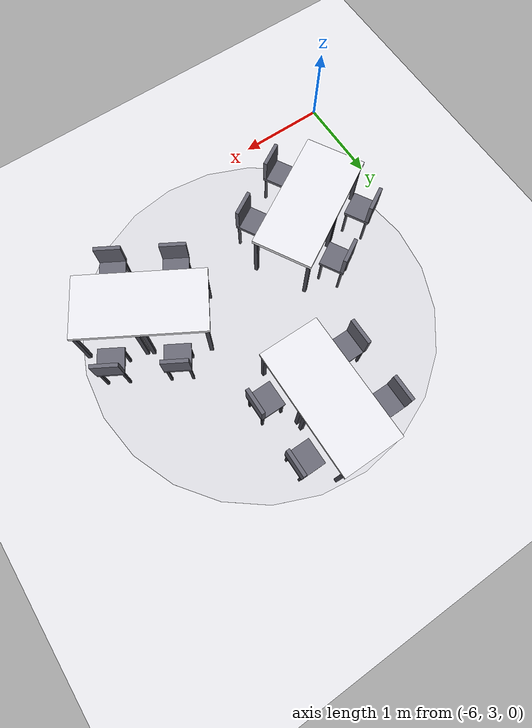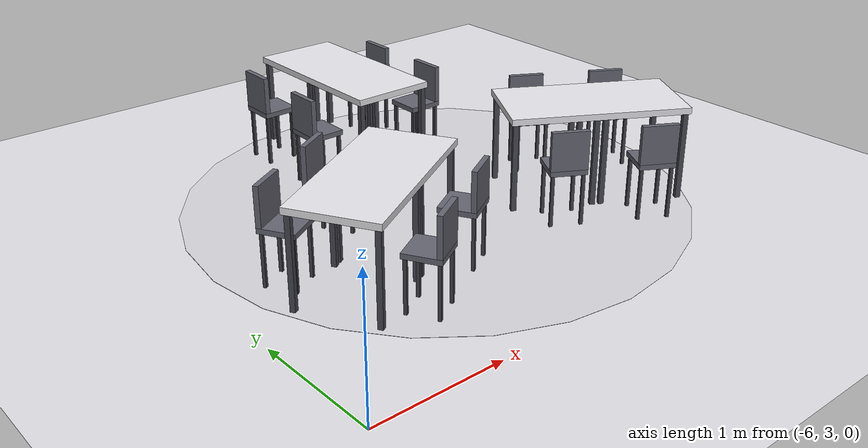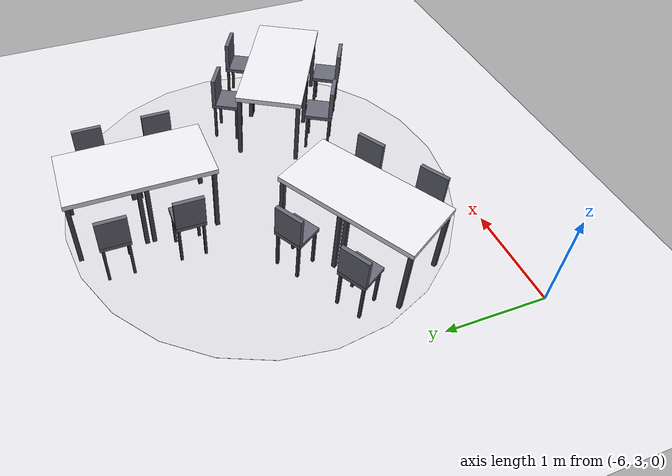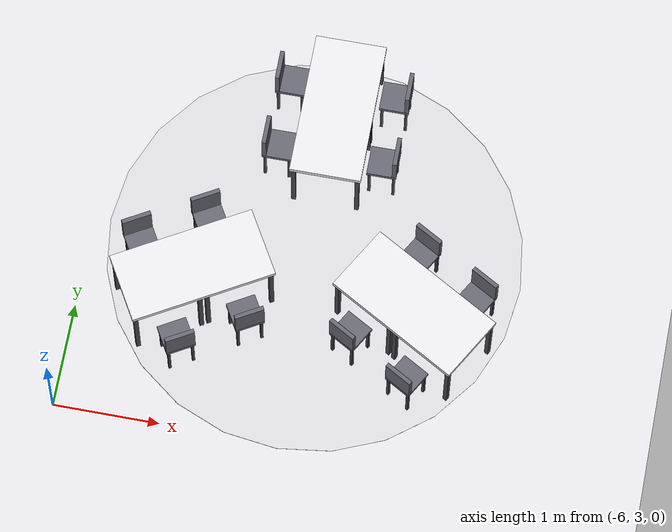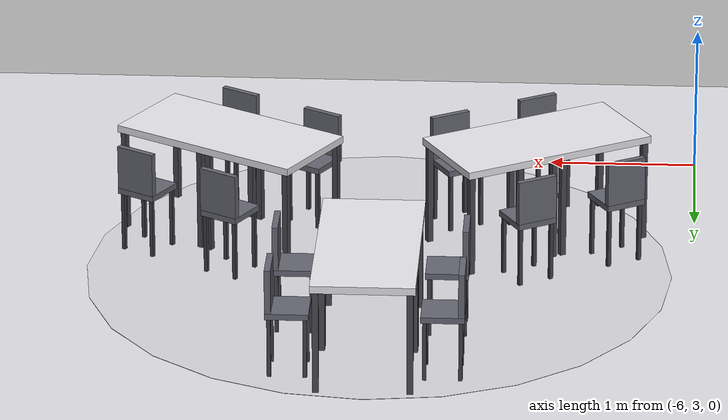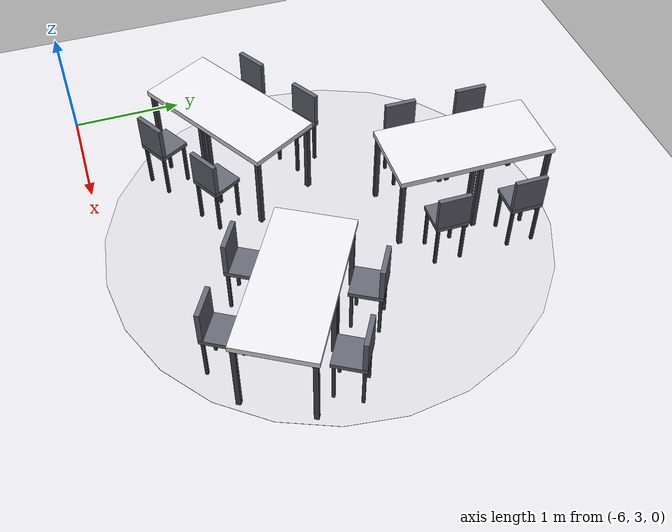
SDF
<sdf version="1.8">
 <world name="restaurant_blueprint_world">
  <model name="ground_plane">
   <static>true</static>
   <link name="link">
    <collision name="collision">
     <geometry><plane><normal>0 0 1</normal><size>120 120</size></plane></geometry>
    </collision>
    <visual name="visual">
     <geometry><plane><normal>0 0 1</normal><size>120 120</size></plane></geometry>
     <material>
      <ambient>0.88 0.88 0.90 1</ambient>
      <diffuse>0.88 0.88 0.90 1</diffuse>
      <specular>0.1 0.1 0.1 1</specular>
     </material>
    </visual>
   </link>
  </model>
  <model name="restaurant_boundary">
   <static>true</static>
   <link name="dining_cluster_north">
    <visual name="north_cluster_floor_disc_vis">
     <pose>-3.898 4.910 0.003 0 0 0</pose>
     <geometry><cylinder><radius>1.95</radius><length>0.002</length></cylinder></geometry>
     <material><ambient>0.84 0.84 0.86 1</ambient><diffuse>0.84 0.84 0.86 1</diffuse></material>
    </visual>
    <visual name="n_cluster_table_n_vis">
     <pose>-3.898 6.100 0.725 0.0000 0.0000 0.0000</pose>
     <geometry><box><size>0.67 1.38 0.05</size></box></geometry>
     <material><ambient>0.85 0.85 0.88 1</ambient><diffuse>0.90 0.90 0.92 1</diffuse></material>
    </visual>
    <visual name="n_cluster_table_n_leg_1_vis">
     <pose>-3.598 6.755 0.350 0 0 0.0000</pose>
     <geometry><box><size>0.04 0.04 0.70</size></box></geometry>
     <material><ambient>0.22 0.22 0.25 1</ambient><diffuse>0.28 0.28 0.32 1</diffuse></material>
    </visual>
    <visual name="n_cluster_table_n_leg_2_vis">
     <pose>-4.198 6.755 0.350 0 0 0.0000</pose>
     <geometry><box><size>0.04 0.04 0.70</size></box></geometry>
     <material><ambient>0.22 0.22 0.25 1</ambient><diffuse>0.28 0.28 0.32 1</diffuse></material>
    </visual>
    <visual name="n_cluster_table_n_leg_3_vis">
     <pose>-3.598 6.135 0.350 0 0 0.0000</pose>
     <geometry><box><size>0.04 0.04 0.70</size></box></geometry>
     <material><ambient>0.22 0.22 0.25 1</ambient><diffuse>0.28 0.28 0.32 1</diffuse></material>
    </visual>
    <visual name="n_cluster_table_n_leg_4_vis">
     <pose>-4.198 6.135 0.350 0 0 0.0000</pose>
     <geometry><box><size>0.04 0.04 0.70</size></box></geometry>
     <material><ambient>0.22 0.22 0.25 1</ambient><diffuse>0.28 0.28 0.32 1</diffuse></material>
    </visual>
    <visual name="n_cluster_table_n_leg_5_vis">
     <pose>-3.598 6.065 0.350 0 0 0.0000</pose>
     <geometry><box><size>0.04 0.04 0.70</size></box></geometry>
     <material><ambient>0.22 0.22 0.25 1</ambient><diffuse>0.28 0.28 0.32 1</diffuse></material>
    </visual>
    <visual name="n_cluster_table_n_leg_6_vis">
     <pose>-4.198 6.065 0.350 0 0 0.0000</pose>
     <geometry><box><size>0.04 0.04 0.70</size></box></geometry>
     <material><ambient>0.22 0.22 0.25 1</ambient><diffuse>0.28 0.28 0.32 1</diffuse></material>
    </visual>
    <visual name="n_cluster_table_n_leg_7_vis">
     <pose>-3.598 5.445 0.350 0 0 0.0000</pose>
     <geometry><box><size>0.04 0.04 0.70</size></box></geometry>
     <material><ambient>0.22 0.22 0.25 1</ambient><diffuse>0.28 0.28 0.32 1</diffuse></material>
    </visual>
    <visual name="n_cluster_table_n_leg_8_vis">
     <pose>-4.198 5.445 0.350 0 0 0.0000</pose>
     <geometry><box><size>0.04 0.04 0.70</size></box></geometry>
     <material><ambient>0.22 0.22 0.25 1</ambient><diffuse>0.28 0.28 0.32 1</diffuse></material>
    </visual>
    <collision name="n_cluster_table_n_col">
     <pose>-3.898 6.100 0.725 0.0000 0.0000 0.0000</pose>
     <geometry><box><size>0.67 1.38 0.05</size></box></geometry>
    </collision>
    <collision name="n_cluster_table_n_leg_1_col">
     <pose>-3.598 6.755 0.350 0 0 0.0000</pose>
     <geometry><box><size>0.04 0.04 0.70</size></box></geometry>
    </collision>
    <collision name="n_cluster_table_n_leg_2_col">
     <pose>-4.198 6.755 0.350 0 0 0.0000</pose>
     <geometry><box><size>0.04 0.04 0.70</size></box></geometry>
    </collision>
    <collision name="n_cluster_table_n_leg_3_col">
     <pose>-3.598 6.135 0.350 0 0 0.0000</pose>
     <geometry><box><size>0.04 0.04 0.70</size></box></geometry>
    </collision>
    <collision name="n_cluster_table_n_leg_4_col">
     <pose>-4.198 6.135 0.350 0 0 0.0000</pose>
     <geometry><box><size>0.04 0.04 0.70</size></box></geometry>
    </collision>
    <collision name="n_cluster_table_n_leg_5_col">
     <pose>-3.598 6.065 0.350 0 0 0.0000</pose>
     <geometry><box><size>0.04 0.04 0.70</size></box></geometry>
    </collision>
    <collision name="n_cluster_table_n_leg_6_col">
     <pose>-4.198 6.065 0.350 0 0 0.0000</pose>
     <geometry><box><size>0.04 0.04 0.70</size></box></geometry>
    </collision>
    <collision name="n_cluster_table_n_leg_7_col">
     <pose>-3.598 5.445 0.350 0 0 0.0000</pose>
     <geometry><box><size>0.04 0.04 0.70</size></box></geometry>
    </collision>
    <collision name="n_cluster_table_n_leg_8_col">
     <pose>-4.198 5.445 0.350 0 0 0.0000</pose>
     <geometry><box><size>0.04 0.04 0.70</size></box></geometry>
    </collision>
    <visual name="n_cluster_chair_n_e1_seat_vis">
     <pose>-3.402 6.435 0.430 0.0000 0.0000 0.0000</pose>
     <geometry><box><size>0.28 0.28 0.04</size></box></geometry>
     <material><ambient>0.30 0.30 0.33 1</ambient><diffuse>0.40 0.40 0.45 1</diffuse></material>
    </visual>
    <visual name="n_cluster_chair_n_e1_back_vis">
     <pose>-3.282 6.435 0.600 0 0 0.0000</pose>
     <geometry><box><size>0.04 0.28 0.30</size></box></geometry>
     <material><ambient>0.30 0.30 0.33 1</ambient><diffuse>0.40 0.40 0.45 1</diffuse></material>
    </visual>
    <visual name="n_cluster_chair_n_e1_leg_1_vis">
     <pose>-3.287 6.550 0.205 0 0 0.0000</pose>
     <geometry><box><size>0.025 0.025 0.41</size></box></geometry>
     <material><ambient>0.20 0.20 0.22 1</ambient><diffuse>0.25 0.25 0.28 1</diffuse></material>
    </visual>
    <visual name="n_cluster_chair_n_e1_leg_2_vis">
     <pose>-3.517 6.550 0.205 0 0 0.0000</pose>
     <geometry><box><size>0.025 0.025 0.41</size></box></geometry>
     <material><ambient>0.20 0.20 0.22 1</ambient><diffuse>0.25 0.25 0.28 1</diffuse></material>
    </visual>
    <visual name="n_cluster_chair_n_e1_leg_3_vis">
     <pose>-3.287 6.320 0.205 0 0 0.0000</pose>
     <geometry><box><size>0.025 0.025 0.41</size></box></geometry>
     <material><ambient>0.20 0.20 0.22 1</ambient><diffuse>0.25 0.25 0.28 1</diffuse></material>
    </visual>
    <visual name="n_cluster_chair_n_e1_leg_4_vis">
     <pose>-3.517 6.320 0.205 0 0 0.0000</pose>
     <geometry><box><size>0.025 0.025 0.41</size></box></geometry>
     <material><ambient>0.20 0.20 0.22 1</ambient><diffuse>0.25 0.25 0.28 1</diffuse></material>
    </visual>
    <collision name="n_cluster_chair_n_e1_seat_col">
     <pose>-3.402 6.435 0.430 0.0000 0.0000 0.0000</pose>
     <geometry><box><size>0.28 0.28 0.04</size></box></geometry>
    </collision>
    <collision name="n_cluster_chair_n_e1_back_col">
     <pose>-3.282 6.435 0.600 0 0 0.0000</pose>
     <geometry><box><size>0.04 0.28 0.30</size></box></geometry>
    </collision>
    <collision name="n_cluster_chair_n_e1_leg_1_col">
     <pose>-3.287 6.550 0.205 0 0 0.0000</pose>
     <geometry><box><size>0.025 0.025 0.41</size></box></geometry>
    </collision>
    <collision name="n_cluster_chair_n_e1_leg_2_col">
     <pose>-3.517 6.550 0.205 0 0 0.0000</pose>
     <geometry><box><size>0.025 0.025 0.41</size></box></geometry>
    </collision>
    <collision name="n_cluster_chair_n_e1_leg_3_col">
     <pose>-3.287 6.320 0.205 0 0 0.0000</pose>
     <geometry><box><size>0.025 0.025 0.41</size></box></geometry>
    </collision>
    <collision name="n_cluster_chair_n_e1_leg_4_col">
     <pose>-3.517 6.320 0.205 0 0 0.0000</pose>
     <geometry><box><size>0.025 0.025 0.41</size></box></geometry>
    </collision>
    <visual name="n_cluster_chair_n_e2_seat_vis">
     <pose>-3.402 5.765 0.430 0.0000 0.0000 0.0000</pose>
     <geometry><box><size>0.28 0.28 0.04</size></box></geometry>
     <material><ambient>0.30 0.30 0.33 1</ambient><diffuse>0.40 0.40 0.45 1</diffuse></material>
    </visual>
    <visual name="n_cluster_chair_n_e2_back_vis">
     <pose>-3.282 5.765 0.600 0 0 0.0000</pose>
     <geometry><box><size>0.04 0.28 0.30</size></box></geometry>
     <material><ambient>0.30 0.30 0.33 1</ambient><diffuse>0.40 0.40 0.45 1</diffuse></material>
    </visual>
    <visual name="n_cluster_chair_n_e2_leg_1_vis">
     <pose>-3.287 5.880 0.205 0 0 0.0000</pose>
     <geometry><box><size>0.025 0.025 0.41</size></box></geometry>
     <material><ambient>0.20 0.20 0.22 1</ambient><diffuse>0.25 0.25 0.28 1</diffuse></material>
    </visual>
    <visual name="n_cluster_chair_n_e2_leg_2_vis">
     <pose>-3.517 5.880 0.205 0 0 0.0000</pose>
     <geometry><box><size>0.025 0.025 0.41</size></box></geometry>
     <material><ambient>0.20 0.20 0.22 1</ambient><diffuse>0.25 0.25 0.28 1</diffuse></material>
    </visual>
    <visual name="n_cluster_chair_n_e2_leg_3_vis">
     <pose>-3.287 5.650 0.205 0 0 0.0000</pose>
     <geometry><box><size>0.025 0.025 0.41</size></box></geometry>
     <material><ambient>0.20 0.20 0.22 1</ambient><diffuse>0.25 0.25 0.28 1</diffuse></material>
    </visual>
    <visual name="n_cluster_chair_n_e2_leg_4_vis">
     <pose>-3.517 5.650 0.205 0 0 0.0000</pose>
     <geometry><box><size>0.025 0.025 0.41</size></box></geometry>
     <material><ambient>0.20 0.20 0.22 1</ambient><diffuse>0.25 0.25 0.28 1</diffuse></material>
    </visual>
    <collision name="n_cluster_chair_n_e2_seat_col">
     <pose>-3.402 5.765 0.430 0.0000 0.0000 0.0000</pose>
     <geometry><box><size>0.28 0.28 0.04</size></box></geometry>
    </collision>
    <collision name="n_cluster_chair_n_e2_back_col">
     <pose>-3.282 5.765 0.600 0 0 0.0000</pose>
     <geometry><box><size>0.04 0.28 0.30</size></box></geometry>
    </collision>
    <collision name="n_cluster_chair_n_e2_leg_1_col">
     <pose>-3.287 5.880 0.205 0 0 0.0000</pose>
     <geometry><box><size>0.025 0.025 0.41</size></box></geometry>
    </collision>
    <collision name="n_cluster_chair_n_e2_leg_2_col">
     <pose>-3.517 5.880 0.205 0 0 0.0000</pose>
     <geometry><box><size>0.025 0.025 0.41</size></box></geometry>
    </collision>
    <collision name="n_cluster_chair_n_e2_leg_3_col">
     <pose>-3.287 5.650 0.205 0 0 0.0000</pose>
     <geometry><box><size>0.025 0.025 0.41</size></box></geometry>
    </collision>
    <collision name="n_cluster_chair_n_e2_leg_4_col">
     <pose>-3.517 5.650 0.205 0 0 0.0000</pose>
     <geometry><box><size>0.025 0.025 0.41</size></box></geometry>
    </collision>
    <visual name="n_cluster_chair_n_w1_seat_vis">
     <pose>-4.394 6.435 0.430 0.0000 0.0000 0.0000</pose>
     <geometry><box><size>0.28 0.28 0.04</size></box></geometry>
     <material><ambient>0.30 0.30 0.33 1</ambient><diffuse>0.40 0.40 0.45 1</diffuse></material>
    </visual>
    <visual name="n_cluster_chair_n_w1_back_vis">
     <pose>-4.514 6.435 0.600 0 0 0.0000</pose>
     <geometry><box><size>0.04 0.28 0.30</size></box></geometry>
     <material><ambient>0.30 0.30 0.33 1</ambient><diffuse>0.40 0.40 0.45 1</diffuse></material>
    </visual>
    <visual name="n_cluster_chair_n_w1_leg_1_vis">
     <pose>-4.279 6.550 0.205 0 0 0.0000</pose>
     <geometry><box><size>0.025 0.025 0.41</size></box></geometry>
     <material><ambient>0.20 0.20 0.22 1</ambient><diffuse>0.25 0.25 0.28 1</diffuse></material>
    </visual>
    <visual name="n_cluster_chair_n_w1_leg_2_vis">
     <pose>-4.509 6.550 0.205 0 0 0.0000</pose>
     <geometry><box><size>0.025 0.025 0.41</size></box></geometry>
     <material><ambient>0.20 0.20 0.22 1</ambient><diffuse>0.25 0.25 0.28 1</diffuse></material>
    </visual>
    <visual name="n_cluster_chair_n_w1_leg_3_vis">
     <pose>-4.279 6.320 0.205 0 0 0.0000</pose>
     <geometry><box><size>0.025 0.025 0.41</size></box></geometry>
     <material><ambient>0.20 0.20 0.22 1</ambient><diffuse>0.25 0.25 0.28 1</diffuse></material>
    </visual>
    <visual name="n_cluster_chair_n_w1_leg_4_vis">
     <pose>-4.509 6.320 0.205 0 0 0.0000</pose>
     <geometry><box><size>0.025 0.025 0.41</size></box></geometry>
     <material><ambient>0.20 0.20 0.22 1</ambient><diffuse>0.25 0.25 0.28 1</diffuse></material>
    </visual>
    <collision name="n_cluster_chair_n_w1_seat_col">
     <pose>-4.394 6.435 0.430 0.0000 0.0000 0.0000</pose>
     <geometry><box><size>0.28 0.28 0.04</size></box></geometry>
    </collision>
    <collision name="n_cluster_chair_n_w1_back_col">
     <pose>-4.514 6.435 0.600 0 0 0.0000</pose>
     <geometry><box><size>0.04 0.28 0.30</size></box></geometry>
    </collision>
    <collision name="n_cluster_chair_n_w1_leg_1_col">
     <pose>-4.279 6.550 0.205 0 0 0.0000</pose>
     <geometry><box><size>0.025 0.025 0.41</size></box></geometry>
    </collision>
    <collision name="n_cluster_chair_n_w1_leg_2_col">
     <pose>-4.509 6.550 0.205 0 0 0.0000</pose>
     <geometry><box><size>0.025 0.025 0.41</size></box></geometry>
    </collision>
    <collision name="n_cluster_chair_n_w1_leg_3_col">
     <pose>-4.279 6.320 0.205 0 0 0.0000</pose>
     <geometry><box><size>0.025 0.025 0.41</size></box></geometry>
    </collision>
    <collision name="n_cluster_chair_n_w1_leg_4_col">
     <pose>-4.509 6.320 0.205 0 0 0.0000</pose>
     <geometry><box><size>0.025 0.025 0.41</size></box></geometry>
    </collision>
    <visual name="n_cluster_chair_n_w2_seat_vis">
     <pose>-4.394 5.765 0.430 0.0000 0.0000 0.0000</pose>
     <geometry><box><size>0.28 0.28 0.04</size></box></geometry>
     <material><ambient>0.30 0.30 0.33 1</ambient><diffuse>0.40 0.40 0.45 1</diffuse></material>
    </visual>
    <visual name="n_cluster_chair_n_w2_back_vis">
     <pose>-4.514 5.765 0.600 0 0 0.0000</pose>
     <geometry><box><size>0.04 0.28 0.30</size></box></geometry>
     <material><ambient>0.30 0.30 0.33 1</ambient><diffuse>0.40 0.40 0.45 1</diffuse></material>
    </visual>
    <visual name="n_cluster_chair_n_w2_leg_1_vis">
     <pose>-4.279 5.880 0.205 0 0 0.0000</pose>
     <geometry><box><size>0.025 0.025 0.41</size></box></geometry>
     <material><ambient>0.20 0.20 0.22 1</ambient><diffuse>0.25 0.25 0.28 1</diffuse></material>
    </visual>
    <visual name="n_cluster_chair_n_w2_leg_2_vis">
     <pose>-4.509 5.880 0.205 0 0 0.0000</pose>
     <geometry><box><size>0.025 0.025 0.41</size></box></geometry>
     <material><ambient>0.20 0.20 0.22 1</ambient><diffuse>0.25 0.25 0.28 1</diffuse></material>
    </visual>
    <visual name="n_cluster_chair_n_w2_leg_3_vis">
     <pose>-4.279 5.650 0.205 0 0 0.0000</pose>
     <geometry><box><size>0.025 0.025 0.41</size></box></geometry>
     <material><ambient>0.20 0.20 0.22 1</ambient><diffuse>0.25 0.25 0.28 1</diffuse></material>
    </visual>
    <visual name="n_cluster_chair_n_w2_leg_4_vis">
     <pose>-4.509 5.650 0.205 0 0 0.0000</pose>
     <geometry><box><size>0.025 0.025 0.41</size></box></geometry>
     <material><ambient>0.20 0.20 0.22 1</ambient><diffuse>0.25 0.25 0.28 1</diffuse></material>
    </visual>
    <collision name="n_cluster_chair_n_w2_seat_col">
     <pose>-4.394 5.765 0.430 0.0000 0.0000 0.0000</pose>
     <geometry><box><size>0.28 0.28 0.04</size></box></geometry>
    </collision>
    <collision name="n_cluster_chair_n_w2_back_col">
     <pose>-4.514 5.765 0.600 0 0 0.0000</pose>
     <geometry><box><size>0.04 0.28 0.30</size></box></geometry>
    </collision>
    <collision name="n_cluster_chair_n_w2_leg_1_col">
     <pose>-4.279 5.880 0.205 0 0 0.0000</pose>
     <geometry><box><size>0.025 0.025 0.41</size></box></geometry>
    </collision>
    <collision name="n_cluster_chair_n_w2_leg_2_col">
     <pose>-4.509 5.880 0.205 0 0 0.0000</pose>
     <geometry><box><size>0.025 0.025 0.41</size></box></geometry>
    </collision>
    <collision name="n_cluster_chair_n_w2_leg_3_col">
     <pose>-4.279 5.650 0.205 0 0 0.0000</pose>
     <geometry><box><size>0.025 0.025 0.41</size></box></geometry>
    </collision>
    <collision name="n_cluster_chair_n_w2_leg_4_col">
     <pose>-4.509 5.650 0.205 0 0 0.0000</pose>
     <geometry><box><size>0.025 0.025 0.41</size></box></geometry>
    </collision>
    <visual name="n_cluster_table_sw_vis">
     <pose>-4.929 4.315 0.725 0.0000 0.0000 2.0944</pose>
     <geometry><box><size>0.67 1.38 0.05</size></box></geometry>
     <material><ambient>0.85 0.85 0.88 1</ambient><diffuse>0.90 0.90 0.92 1</diffuse></material>
    </visual>
    <visual name="n_cluster_table_sw_leg_1_vis">
     <pose>-5.646 4.247 0.350 0 0 2.0944</pose>
     <geometry><box><size>0.04 0.04 0.70</size></box></geometry>
     <material><ambient>0.22 0.22 0.25 1</ambient><diffuse>0.28 0.28 0.32 1</diffuse></material>
    </visual>
    <visual name="n_cluster_table_sw_leg_2_vis">
     <pose>-5.346 3.728 0.350 0 0 2.0944</pose>
     <geometry><box><size>0.04 0.04 0.70</size></box></geometry>
     <material><ambient>0.22 0.22 0.25 1</ambient><diffuse>0.28 0.28 0.32 1</diffuse></material>
    </visual>
    <visual name="n_cluster_table_sw_leg_3_vis">
     <pose>-5.109 4.557 0.350 0 0 2.0944</pose>
     <geometry><box><size>0.04 0.04 0.70</size></box></geometry>
     <material><ambient>0.22 0.22 0.25 1</ambient><diffuse>0.28 0.28 0.32 1</diffuse></material>
    </visual>
    <visual name="n_cluster_table_sw_leg_4_vis">
     <pose>-4.809 4.038 0.350 0 0 2.0944</pose>
     <geometry><box><size>0.04 0.04 0.70</size></box></geometry>
     <material><ambient>0.22 0.22 0.25 1</ambient><diffuse>0.28 0.28 0.32 1</diffuse></material>
    </visual>
    <visual name="n_cluster_table_sw_leg_5_vis">
     <pose>-5.049 4.592 0.350 0 0 2.0944</pose>
     <geometry><box><size>0.04 0.04 0.70</size></box></geometry>
     <material><ambient>0.22 0.22 0.25 1</ambient><diffuse>0.28 0.28 0.32 1</diffuse></material>
    </visual>
    <visual name="n_cluster_table_sw_leg_6_vis">
     <pose>-4.749 4.073 0.350 0 0 2.0944</pose>
     <geometry><box><size>0.04 0.04 0.70</size></box></geometry>
     <material><ambient>0.22 0.22 0.25 1</ambient><diffuse>0.28 0.28 0.32 1</diffuse></material>
    </visual>
    <visual name="n_cluster_table_sw_leg_7_vis">
     <pose>-4.512 4.902 0.350 0 0 2.0944</pose>
     <geometry><box><size>0.04 0.04 0.70</size></box></geometry>
     <material><ambient>0.22 0.22 0.25 1</ambient><diffuse>0.28 0.28 0.32 1</diffuse></material>
    </visual>
    <visual name="n_cluster_table_sw_leg_8_vis">
     <pose>-4.212 4.383 0.350 0 0 2.0944</pose>
     <geometry><box><size>0.04 0.04 0.70</size></box></geometry>
     <material><ambient>0.22 0.22 0.25 1</ambient><diffuse>0.28 0.28 0.32 1</diffuse></material>
    </visual>
    <collision name="n_cluster_table_sw_col">
     <pose>-4.929 4.315 0.725 0.0000 0.0000 2.0944</pose>
     <geometry><box><size>0.67 1.38 0.05</size></box></geometry>
    </collision>
    <collision name="n_cluster_table_sw_leg_1_col">
     <pose>-5.646 4.247 0.350 0 0 2.0944</pose>
     <geometry><box><size>0.04 0.04 0.70</size></box></geometry>
    </collision>
    <collision name="n_cluster_table_sw_leg_2_col">
     <pose>-5.346 3.728 0.350 0 0 2.0944</pose>
     <geometry><box><size>0.04 0.04 0.70</size></box></geometry>
    </collision>
    <collision name="n_cluster_table_sw_leg_3_col">
     <pose>-5.109 4.557 0.350 0 0 2.0944</pose>
     <geometry><box><size>0.04 0.04 0.70</size></box></geometry>
    </collision>
    <collision name="n_cluster_table_sw_leg_4_col">
     <pose>-4.809 4.038 0.350 0 0 2.0944</pose>
     <geometry><box><size>0.04 0.04 0.70</size></box></geometry>
    </collision>
    <collision name="n_cluster_table_sw_leg_5_col">
     <pose>-5.049 4.592 0.350 0 0 2.0944</pose>
     <geometry><box><size>0.04 0.04 0.70</size></box></geometry>
    </collision>
    <collision name="n_cluster_table_sw_leg_6_col">
     <pose>-4.749 4.073 0.350 0 0 2.0944</pose>
     <geometry><box><size>0.04 0.04 0.70</size></box></geometry>
    </collision>
    <collision name="n_cluster_table_sw_leg_7_col">
     <pose>-4.512 4.902 0.350 0 0 2.0944</pose>
     <geometry><box><size>0.04 0.04 0.70</size></box></geometry>
    </collision>
    <collision name="n_cluster_table_sw_leg_8_col">
     <pose>-4.212 4.383 0.350 0 0 2.0944</pose>
     <geometry><box><size>0.04 0.04 0.70</size></box></geometry>
    </collision>
    <visual name="n_cluster_chair_sw_e1_seat_vis">
     <pose>-5.467 4.577 0.430 0.0000 0.0000 2.0944</pose>
     <geometry><box><size>0.28 0.28 0.04</size></box></geometry>
     <material><ambient>0.30 0.30 0.33 1</ambient><diffuse>0.40 0.40 0.45 1</diffuse></material>
    </visual>
    <visual name="n_cluster_chair_sw_e1_back_vis">
     <pose>-5.527 4.681 0.600 0 0 2.0944</pose>
     <geometry><box><size>0.04 0.28 0.30</size></box></geometry>
     <material><ambient>0.30 0.30 0.33 1</ambient><diffuse>0.40 0.40 0.45 1</diffuse></material>
    </visual>
    <visual name="n_cluster_chair_sw_e1_leg_1_vis">
     <pose>-5.624 4.619 0.205 0 0 2.0944</pose>
     <geometry><box><size>0.025 0.025 0.41</size></box></geometry>
     <material><ambient>0.20 0.20 0.22 1</ambient><diffuse>0.25 0.25 0.28 1</diffuse></material>
    </visual>
    <visual name="n_cluster_chair_sw_e1_leg_2_vis">
     <pose>-5.509 4.420 0.205 0 0 2.0944</pose>
     <geometry><box><size>0.025 0.025 0.41</size></box></geometry>
     <material><ambient>0.20 0.20 0.22 1</ambient><diffuse>0.25 0.25 0.28 1</diffuse></material>
    </visual>
    <visual name="n_cluster_chair_sw_e1_leg_3_vis">
     <pose>-5.425 4.734 0.205 0 0 2.0944</pose>
     <geometry><box><size>0.025 0.025 0.41</size></box></geometry>
     <material><ambient>0.20 0.20 0.22 1</ambient><diffuse>0.25 0.25 0.28 1</diffuse></material>
    </visual>
    <visual name="n_cluster_chair_sw_e1_leg_4_vis">
     <pose>-5.310 4.535 0.205 0 0 2.0944</pose>
     <geometry><box><size>0.025 0.025 0.41</size></box></geometry>
     <material><ambient>0.20 0.20 0.22 1</ambient><diffuse>0.25 0.25 0.28 1</diffuse></material>
    </visual>
    <collision name="n_cluster_chair_sw_e1_seat_col">
     <pose>-5.467 4.577 0.430 0.0000 0.0000 2.0944</pose>
     <geometry><box><size>0.28 0.28 0.04</size></box></geometry>
    </collision>
    <collision name="n_cluster_chair_sw_e1_back_col">
     <pose>-5.527 4.681 0.600 0 0 2.0944</pose>
     <geometry><box><size>0.04 0.28 0.30</size></box></geometry>
    </collision>
    <collision name="n_cluster_chair_sw_e1_leg_1_col">
     <pose>-5.624 4.619 0.205 0 0 2.0944</pose>
     <geometry><box><size>0.025 0.025 0.41</size></box></geometry>
    </collision>
    <collision name="n_cluster_chair_sw_e1_leg_2_col">
     <pose>-5.509 4.420 0.205 0 0 2.0944</pose>
     <geometry><box><size>0.025 0.025 0.41</size></box></geometry>
    </collision>
    <collision name="n_cluster_chair_sw_e1_leg_3_col">
     <pose>-5.425 4.734 0.205 0 0 2.0944</pose>
     <geometry><box><size>0.025 0.025 0.41</size></box></geometry>
    </collision>
    <collision name="n_cluster_chair_sw_e1_leg_4_col">
     <pose>-5.310 4.535 0.205 0 0 2.0944</pose>
     <geometry><box><size>0.025 0.025 0.41</size></box></geometry>
    </collision>
    <visual name="n_cluster_chair_sw_e2_seat_vis">
     <pose>-4.886 4.912 0.430 0.0000 0.0000 2.0944</pose>
     <geometry><box><size>0.28 0.28 0.04</size></box></geometry>
     <material><ambient>0.30 0.30 0.33 1</ambient><diffuse>0.40 0.40 0.45 1</diffuse></material>
    </visual>
    <visual name="n_cluster_chair_sw_e2_back_vis">
     <pose>-4.946 5.016 0.600 0 0 2.0944</pose>
     <geometry><box><size>0.04 0.28 0.30</size></box></geometry>
     <material><ambient>0.30 0.30 0.33 1</ambient><diffuse>0.40 0.40 0.45 1</diffuse></material>
    </visual>
    <visual name="n_cluster_chair_sw_e2_leg_1_vis">
     <pose>-5.043 4.954 0.205 0 0 2.0944</pose>
     <geometry><box><size>0.025 0.025 0.41</size></box></geometry>
     <material><ambient>0.20 0.20 0.22 1</ambient><diffuse>0.25 0.25 0.28 1</diffuse></material>
    </visual>
    <visual name="n_cluster_chair_sw_e2_leg_2_vis">
     <pose>-4.928 4.755 0.205 0 0 2.0944</pose>
     <geometry><box><size>0.025 0.025 0.41</size></box></geometry>
     <material><ambient>0.20 0.20 0.22 1</ambient><diffuse>0.25 0.25 0.28 1</diffuse></material>
    </visual>
    <visual name="n_cluster_chair_sw_e2_leg_3_vis">
     <pose>-4.844 5.069 0.205 0 0 2.0944</pose>
     <geometry><box><size>0.025 0.025 0.41</size></box></geometry>
     <material><ambient>0.20 0.20 0.22 1</ambient><diffuse>0.25 0.25 0.28 1</diffuse></material>
    </visual>
    <visual name="n_cluster_chair_sw_e2_leg_4_vis">
     <pose>-4.729 4.870 0.205 0 0 2.0944</pose>
     <geometry><box><size>0.025 0.025 0.41</size></box></geometry>
     <material><ambient>0.20 0.20 0.22 1</ambient><diffuse>0.25 0.25 0.28 1</diffuse></material>
    </visual>
    <collision name="n_cluster_chair_sw_e2_seat_col">
     <pose>-4.886 4.912 0.430 0.0000 0.0000 2.0944</pose>
     <geometry><box><size>0.28 0.28 0.04</size></box></geometry>
    </collision>
    <collision name="n_cluster_chair_sw_e2_back_col">
     <pose>-4.946 5.016 0.600 0 0 2.0944</pose>
     <geometry><box><size>0.04 0.28 0.30</size></box></geometry>
    </collision>
    <collision name="n_cluster_chair_sw_e2_leg_1_col">
     <pose>-5.043 4.954 0.205 0 0 2.0944</pose>
     <geometry><box><size>0.025 0.025 0.41</size></box></geometry>
    </collision>
    <collision name="n_cluster_chair_sw_e2_leg_2_col">
     <pose>-4.928 4.755 0.205 0 0 2.0944</pose>
     <geometry><box><size>0.025 0.025 0.41</size></box></geometry>
    </collision>
    <collision name="n_cluster_chair_sw_e2_leg_3_col">
     <pose>-4.844 5.069 0.205 0 0 2.0944</pose>
     <geometry><box><size>0.025 0.025 0.41</size></box></geometry>
    </collision>
    <collision name="n_cluster_chair_sw_e2_leg_4_col">
     <pose>-4.729 4.870 0.205 0 0 2.0944</pose>
     <geometry><box><size>0.025 0.025 0.41</size></box></geometry>
    </collision>
    <visual name="n_cluster_chair_sw_w1_seat_vis">
     <pose>-4.971 3.718 0.430 0.0000 0.0000 2.0944</pose>
     <geometry><box><size>0.28 0.28 0.04</size></box></geometry>
     <material><ambient>0.30 0.30 0.33 1</ambient><diffuse>0.40 0.40 0.45 1</diffuse></material>
    </visual>
    <visual name="n_cluster_chair_sw_w1_back_vis">
     <pose>-4.911 3.614 0.600 0 0 2.0944</pose>
     <geometry><box><size>0.04 0.28 0.30</size></box></geometry>
     <material><ambient>0.30 0.30 0.33 1</ambient><diffuse>0.40 0.40 0.45 1</diffuse></material>
    </visual>
    <visual name="n_cluster_chair_sw_w1_leg_1_vis">
     <pose>-5.128 3.760 0.205 0 0 2.0944</pose>
     <geometry><box><size>0.025 0.025 0.41</size></box></geometry>
     <material><ambient>0.20 0.20 0.22 1</ambient><diffuse>0.25 0.25 0.28 1</diffuse></material>
    </visual>
    <visual name="n_cluster_chair_sw_w1_leg_2_vis">
     <pose>-5.013 3.561 0.205 0 0 2.0944</pose>
     <geometry><box><size>0.025 0.025 0.41</size></box></geometry>
     <material><ambient>0.20 0.20 0.22 1</ambient><diffuse>0.25 0.25 0.28 1</diffuse></material>
    </visual>
    <visual name="n_cluster_chair_sw_w1_leg_3_vis">
     <pose>-4.929 3.875 0.205 0 0 2.0944</pose>
     <geometry><box><size>0.025 0.025 0.41</size></box></geometry>
     <material><ambient>0.20 0.20 0.22 1</ambient><diffuse>0.25 0.25 0.28 1</diffuse></material>
    </visual>
    <visual name="n_cluster_chair_sw_w1_leg_4_vis">
     <pose>-4.814 3.676 0.205 0 0 2.0944</pose>
     <geometry><box><size>0.025 0.025 0.41</size></box></geometry>
     <material><ambient>0.20 0.20 0.22 1</ambient><diffuse>0.25 0.25 0.28 1</diffuse></material>
    </visual>
    <collision name="n_cluster_chair_sw_w1_seat_col">
     <pose>-4.971 3.718 0.430 0.0000 0.0000 2.0944</pose>
     <geometry><box><size>0.28 0.28 0.04</size></box></geometry>
    </collision>
    <collision name="n_cluster_chair_sw_w1_back_col">
     <pose>-4.911 3.614 0.600 0 0 2.0944</pose>
     <geometry><box><size>0.04 0.28 0.30</size></box></geometry>
    </collision>
    <collision name="n_cluster_chair_sw_w1_leg_1_col">
     <pose>-5.128 3.760 0.205 0 0 2.0944</pose>
     <geometry><box><size>0.025 0.025 0.41</size></box></geometry>
    </collision>
    <collision name="n_cluster_chair_sw_w1_leg_2_col">
     <pose>-5.013 3.561 0.205 0 0 2.0944</pose>
     <geometry><box><size>0.025 0.025 0.41</size></box></geometry>
    </collision>
    <collision name="n_cluster_chair_sw_w1_leg_3_col">
     <pose>-4.929 3.875 0.205 0 0 2.0944</pose>
     <geometry><box><size>0.025 0.025 0.41</size></box></geometry>
    </collision>
    <collision name="n_cluster_chair_sw_w1_leg_4_col">
     <pose>-4.814 3.676 0.205 0 0 2.0944</pose>
     <geometry><box><size>0.025 0.025 0.41</size></box></geometry>
    </collision>
    <visual name="n_cluster_chair_sw_w2_seat_vis">
     <pose>-4.390 4.053 0.430 0.0000 0.0000 2.0944</pose>
     <geometry><box><size>0.28 0.28 0.04</size></box></geometry>
     <material><ambient>0.30 0.30 0.33 1</ambient><diffuse>0.40 0.40 0.45 1</diffuse></material>
    </visual>
    <visual name="n_cluster_chair_sw_w2_back_vis">
     <pose>-4.330 3.949 0.600 0 0 2.0944</pose>
     <geometry><box><size>0.04 0.28 0.30</size></box></geometry>
     <material><ambient>0.30 0.30 0.33 1</ambient><diffuse>0.40 0.40 0.45 1</diffuse></material>
    </visual>
    <visual name="n_cluster_chair_sw_w2_leg_1_vis">
     <pose>-4.547 4.095 0.205 0 0 2.0944</pose>
     <geometry><box><size>0.025 0.025 0.41</size></box></geometry>
     <material><ambient>0.20 0.20 0.22 1</ambient><diffuse>0.25 0.25 0.28 1</diffuse></material>
    </visual>
    <visual name="n_cluster_chair_sw_w2_leg_2_vis">
     <pose>-4.432 3.896 0.205 0 0 2.0944</pose>
     <geometry><box><size>0.025 0.025 0.41</size></box></geometry>
     <material><ambient>0.20 0.20 0.22 1</ambient><diffuse>0.25 0.25 0.28 1</diffuse></material>
    </visual>
    <visual name="n_cluster_chair_sw_w2_leg_3_vis">
     <pose>-4.348 4.210 0.205 0 0 2.0944</pose>
     <geometry><box><size>0.025 0.025 0.41</size></box></geometry>
     <material><ambient>0.20 0.20 0.22 1</ambient><diffuse>0.25 0.25 0.28 1</diffuse></material>
    </visual>
    <visual name="n_cluster_chair_sw_w2_leg_4_vis">
     <pose>-4.233 4.011 0.205 0 0 2.0944</pose>
     <geometry><box><size>0.025 0.025 0.41</size></box></geometry>
     <material><ambient>0.20 0.20 0.22 1</ambient><diffuse>0.25 0.25 0.28 1</diffuse></material>
    </visual>
    <collision name="n_cluster_chair_sw_w2_seat_col">
     <pose>-4.390 4.053 0.430 0.0000 0.0000 2.0944</pose>
     <geometry><box><size>0.28 0.28 0.04</size></box></geometry>
    </collision>
    <collision name="n_cluster_chair_sw_w2_back_col">
     <pose>-4.330 3.949 0.600 0 0 2.0944</pose>
     <geometry><box><size>0.04 0.28 0.30</size></box></geometry>
    </collision>
    <collision name="n_cluster_chair_sw_w2_leg_1_col">
     <pose>-4.547 4.095 0.205 0 0 2.0944</pose>
     <geometry><box><size>0.025 0.025 0.41</size></box></geometry>
    </collision>
    <collision name="n_cluster_chair_sw_w2_leg_2_col">
     <pose>-4.432 3.896 0.205 0 0 2.0944</pose>
     <geometry><box><size>0.025 0.025 0.41</size></box></geometry>
    </collision>
    <collision name="n_cluster_chair_sw_w2_leg_3_col">
     <pose>-4.348 4.210 0.205 0 0 2.0944</pose>
     <geometry><box><size>0.025 0.025 0.41</size></box></geometry>
    </collision>
    <collision name="n_cluster_chair_sw_w2_leg_4_col">
     <pose>-4.233 4.011 0.205 0 0 2.0944</pose>
     <geometry><box><size>0.025 0.025 0.41</size></box></geometry>
    </collision>
    <visual name="n_cluster_table_se_vis">
     <pose>-2.867 4.315 0.725 0.0000 0.0000 -2.0944</pose>
     <geometry><box><size>0.67 1.38 0.05</size></box></geometry>
     <material><ambient>0.85 0.85 0.88 1</ambient><diffuse>0.90 0.90 0.92 1</diffuse></material>
    </visual>
    <visual name="n_cluster_table_se_leg_1_vis">
     <pose>-2.450 3.728 0.350 0 0 -2.0944</pose>
     <geometry><box><size>0.04 0.04 0.70</size></box></geometry>
     <material><ambient>0.22 0.22 0.25 1</ambient><diffuse>0.28 0.28 0.32 1</diffuse></material>
    </visual>
    <visual name="n_cluster_table_se_leg_2_vis">
     <pose>-2.150 4.247 0.350 0 0 -2.0944</pose>
     <geometry><box><size>0.04 0.04 0.70</size></box></geometry>
     <material><ambient>0.22 0.22 0.25 1</ambient><diffuse>0.28 0.28 0.32 1</diffuse></material>
    </visual>
    <visual name="n_cluster_table_se_leg_3_vis">
     <pose>-2.987 4.038 0.350 0 0 -2.0944</pose>
     <geometry><box><size>0.04 0.04 0.70</size></box></geometry>
     <material><ambient>0.22 0.22 0.25 1</ambient><diffuse>0.28 0.28 0.32 1</diffuse></material>
    </visual>
    <visual name="n_cluster_table_se_leg_4_vis">
     <pose>-2.687 4.557 0.350 0 0 -2.0944</pose>
     <geometry><box><size>0.04 0.04 0.70</size></box></geometry>
     <material><ambient>0.22 0.22 0.25 1</ambient><diffuse>0.28 0.28 0.32 1</diffuse></material>
    </visual>
    <visual name="n_cluster_table_se_leg_5_vis">
     <pose>-3.047 4.073 0.350 0 0 -2.0944</pose>
     <geometry><box><size>0.04 0.04 0.70</size></box></geometry>
     <material><ambient>0.22 0.22 0.25 1</ambient><diffuse>0.28 0.28 0.32 1</diffuse></material>
    </visual>
    <visual name="n_cluster_table_se_leg_6_vis">
     <pose>-2.747 4.592 0.350 0 0 -2.0944</pose>
     <geometry><box><size>0.04 0.04 0.70</size></box></geometry>
     <material><ambient>0.22 0.22 0.25 1</ambient><diffuse>0.28 0.28 0.32 1</diffuse></material>
    </visual>
    <visual name="n_cluster_table_se_leg_7_vis">
     <pose>-3.584 4.383 0.350 0 0 -2.0944</pose>
     <geometry><box><size>0.04 0.04 0.70</size></box></geometry>
     <material><ambient>0.22 0.22 0.25 1</ambient><diffuse>0.28 0.28 0.32 1</diffuse></material>
    </visual>
    <visual name="n_cluster_table_se_leg_8_vis">
     <pose>-3.284 4.902 0.350 0 0 -2.0944</pose>
     <geometry><box><size>0.04 0.04 0.70</size></box></geometry>
     <material><ambient>0.22 0.22 0.25 1</ambient><diffuse>0.28 0.28 0.32 1</diffuse></material>
    </visual>
    <collision name="n_cluster_table_se_col">
     <pose>-2.867 4.315 0.725 0.0000 0.0000 -2.0944</pose>
     <geometry><box><size>0.67 1.38 0.05</size></box></geometry>
    </collision>
    <collision name="n_cluster_table_se_leg_1_col">
     <pose>-2.450 3.728 0.350 0 0 -2.0944</pose>
     <geometry><box><size>0.04 0.04 0.70</size></box></geometry>
    </collision>
    <collision name="n_cluster_table_se_leg_2_col">
     <pose>-2.150 4.247 0.350 0 0 -2.0944</pose>
     <geometry><box><size>0.04 0.04 0.70</size></box></geometry>
    </collision>
    <collision name="n_cluster_table_se_leg_3_col">
     <pose>-2.987 4.038 0.350 0 0 -2.0944</pose>
     <geometry><box><size>0.04 0.04 0.70</size></box></geometry>
    </collision>
    <collision name="n_cluster_table_se_leg_4_col">
     <pose>-2.687 4.557 0.350 0 0 -2.0944</pose>
     <geometry><box><size>0.04 0.04 0.70</size></box></geometry>
    </collision>
    <collision name="n_cluster_table_se_leg_5_col">
     <pose>-3.047 4.073 0.350 0 0 -2.0944</pose>
     <geometry><box><size>0.04 0.04 0.70</size></box></geometry>
    </collision>
    <collision name="n_cluster_table_se_leg_6_col">
     <pose>-2.747 4.592 0.350 0 0 -2.0944</pose>
     <geometry><box><size>0.04 0.04 0.70</size></box></geometry>
    </collision>
    <collision name="n_cluster_table_se_leg_7_col">
     <pose>-3.584 4.383 0.350 0 0 -2.0944</pose>
     <geometry><box><size>0.04 0.04 0.70</size></box></geometry>
    </collision>
    <collision name="n_cluster_table_se_leg_8_col">
     <pose>-3.284 4.902 0.350 0 0 -2.0944</pose>
     <geometry><box><size>0.04 0.04 0.70</size></box></geometry>
    </collision>
    <visual name="n_cluster_chair_se_e1_seat_vis">
     <pose>-2.825 3.718 0.430 0.0000 0.0000 -2.0944</pose>
     <geometry><box><size>0.28 0.28 0.04</size></box></geometry>
     <material><ambient>0.30 0.30 0.33 1</ambient><diffuse>0.40 0.40 0.45 1</diffuse></material>
    </visual>
    <visual name="n_cluster_chair_se_e1_back_vis">
     <pose>-2.885 3.614 0.600 0 0 -2.0944</pose>
     <geometry><box><size>0.04 0.28 0.30</size></box></geometry>
     <material><ambient>0.30 0.30 0.33 1</ambient><diffuse>0.40 0.40 0.45 1</diffuse></material>
    </visual>
    <visual name="n_cluster_chair_se_e1_leg_1_vis">
     <pose>-2.783 3.561 0.205 0 0 -2.0944</pose>
     <geometry><box><size>0.025 0.025 0.41</size></box></geometry>
     <material><ambient>0.20 0.20 0.22 1</ambient><diffuse>0.25 0.25 0.28 1</diffuse></material>
    </visual>
    <visual name="n_cluster_chair_se_e1_leg_2_vis">
     <pose>-2.668 3.760 0.205 0 0 -2.0944</pose>
     <geometry><box><size>0.025 0.025 0.41</size></box></geometry>
     <material><ambient>0.20 0.20 0.22 1</ambient><diffuse>0.25 0.25 0.28 1</diffuse></material>
    </visual>
    <visual name="n_cluster_chair_se_e1_leg_3_vis">
     <pose>-2.982 3.676 0.205 0 0 -2.0944</pose>
     <geometry><box><size>0.025 0.025 0.41</size></box></geometry>
     <material><ambient>0.20 0.20 0.22 1</ambient><diffuse>0.25 0.25 0.28 1</diffuse></material>
    </visual>
    <visual name="n_cluster_chair_se_e1_leg_4_vis">
     <pose>-2.867 3.875 0.205 0 0 -2.0944</pose>
     <geometry><box><size>0.025 0.025 0.41</size></box></geometry>
     <material><ambient>0.20 0.20 0.22 1</ambient><diffuse>0.25 0.25 0.28 1</diffuse></material>
    </visual>
    <collision name="n_cluster_chair_se_e1_seat_col">
     <pose>-2.825 3.718 0.430 0.0000 0.0000 -2.0944</pose>
     <geometry><box><size>0.28 0.28 0.04</size></box></geometry>
    </collision>
    <collision name="n_cluster_chair_se_e1_back_col">
     <pose>-2.885 3.614 0.600 0 0 -2.0944</pose>
     <geometry><box><size>0.04 0.28 0.30</size></box></geometry>
    </collision>
    <collision name="n_cluster_chair_se_e1_leg_1_col">
     <pose>-2.783 3.561 0.205 0 0 -2.0944</pose>
     <geometry><box><size>0.025 0.025 0.41</size></box></geometry>
    </collision>
    <collision name="n_cluster_chair_se_e1_leg_2_col">
     <pose>-2.668 3.760 0.205 0 0 -2.0944</pose>
     <geometry><box><size>0.025 0.025 0.41</size></box></geometry>
    </collision>
    <collision name="n_cluster_chair_se_e1_leg_3_col">
     <pose>-2.982 3.676 0.205 0 0 -2.0944</pose>
     <geometry><box><size>0.025 0.025 0.41</size></box></geometry>
    </collision>
    <collision name="n_cluster_chair_se_e1_leg_4_col">
     <pose>-2.867 3.875 0.205 0 0 -2.0944</pose>
     <geometry><box><size>0.025 0.025 0.41</size></box></geometry>
    </collision>
    <visual name="n_cluster_chair_se_e2_seat_vis">
     <pose>-3.406 4.053 0.430 0.0000 0.0000 -2.0944</pose>
     <geometry><box><size>0.28 0.28 0.04</size></box></geometry>
     <material><ambient>0.30 0.30 0.33 1</ambient><diffuse>0.40 0.40 0.45 1</diffuse></material>
    </visual>
    <visual name="n_cluster_chair_se_e2_back_vis">
     <pose>-3.466 3.949 0.600 0 0 -2.0944</pose>
     <geometry><box><size>0.04 0.28 0.30</size></box></geometry>
     <material><ambient>0.30 0.30 0.33 1</ambient><diffuse>0.40 0.40 0.45 1</diffuse></material>
    </visual>
    <visual name="n_cluster_chair_se_e2_leg_1_vis">
     <pose>-3.364 3.896 0.205 0 0 -2.0944</pose>
     <geometry><box><size>0.025 0.025 0.41</size></box></geometry>
     <material><ambient>0.20 0.20 0.22 1</ambient><diffuse>0.25 0.25 0.28 1</diffuse></material>
    </visual>
    <visual name="n_cluster_chair_se_e2_leg_2_vis">
     <pose>-3.249 4.095 0.205 0 0 -2.0944</pose>
     <geometry><box><size>0.025 0.025 0.41</size></box></geometry>
     <material><ambient>0.20 0.20 0.22 1</ambient><diffuse>0.25 0.25 0.28 1</diffuse></material>
    </visual>
    <visual name="n_cluster_chair_se_e2_leg_3_vis">
     <pose>-3.563 4.011 0.205 0 0 -2.0944</pose>
     <geometry><box><size>0.025 0.025 0.41</size></box></geometry>
     <material><ambient>0.20 0.20 0.22 1</ambient><diffuse>0.25 0.25 0.28 1</diffuse></material>
    </visual>
    <visual name="n_cluster_chair_se_e2_leg_4_vis">
     <pose>-3.448 4.210 0.205 0 0 -2.0944</pose>
     <geometry><box><size>0.025 0.025 0.41</size></box></geometry>
     <material><ambient>0.20 0.20 0.22 1</ambient><diffuse>0.25 0.25 0.28 1</diffuse></material>
    </visual>
    <collision name="n_cluster_chair_se_e2_seat_col">
     <pose>-3.406 4.053 0.430 0.0000 0.0000 -2.0944</pose>
     <geometry><box><size>0.28 0.28 0.04</size></box></geometry>
    </collision>
    <collision name="n_cluster_chair_se_e2_back_col">
     <pose>-3.466 3.949 0.600 0 0 -2.0944</pose>
     <geometry><box><size>0.04 0.28 0.30</size></box></geometry>
    </collision>
    <collision name="n_cluster_chair_se_e2_leg_1_col">
     <pose>-3.364 3.896 0.205 0 0 -2.0944</pose>
     <geometry><box><size>0.025 0.025 0.41</size></box></geometry>
    </collision>
    <collision name="n_cluster_chair_se_e2_leg_2_col">
     <pose>-3.249 4.095 0.205 0 0 -2.0944</pose>
     <geometry><box><size>0.025 0.025 0.41</size></box></geometry>
    </collision>
    <collision name="n_cluster_chair_se_e2_leg_3_col">
     <pose>-3.563 4.011 0.205 0 0 -2.0944</pose>
     <geometry><box><size>0.025 0.025 0.41</size></box></geometry>
    </collision>
    <collision name="n_cluster_chair_se_e2_leg_4_col">
     <pose>-3.448 4.210 0.205 0 0 -2.0944</pose>
     <geometry><box><size>0.025 0.025 0.41</size></box></geometry>
    </collision>
    <visual name="n_cluster_chair_se_w1_seat_vis">
     <pose>-2.329 4.577 0.430 0.0000 0.0000 -2.0944</pose>
     <geometry><box><size>0.28 0.28 0.04</size></box></geometry>
     <material><ambient>0.30 0.30 0.33 1</ambient><diffuse>0.40 0.40 0.45 1</diffuse></material>
    </visual>
    <visual name="n_cluster_chair_se_w1_back_vis">
     <pose>-2.269 4.681 0.600 0 0 -2.0944</pose>
     <geometry><box><size>0.04 0.28 0.30</size></box></geometry>
     <material><ambient>0.30 0.30 0.33 1</ambient><diffuse>0.40 0.40 0.45 1</diffuse></material>
    </visual>
    <visual name="n_cluster_chair_se_w1_leg_1_vis">
     <pose>-2.287 4.420 0.205 0 0 -2.0944</pose>
     <geometry><box><size>0.025 0.025 0.41</size></box></geometry>
     <material><ambient>0.20 0.20 0.22 1</ambient><diffuse>0.25 0.25 0.28 1</diffuse></material>
    </visual>
    <visual name="n_cluster_chair_se_w1_leg_2_vis">
     <pose>-2.172 4.619 0.205 0 0 -2.0944</pose>
     <geometry><box><size>0.025 0.025 0.41</size></box></geometry>
     <material><ambient>0.20 0.20 0.22 1</ambient><diffuse>0.25 0.25 0.28 1</diffuse></material>
    </visual>
    <visual name="n_cluster_chair_se_w1_leg_3_vis">
     <pose>-2.486 4.535 0.205 0 0 -2.0944</pose>
     <geometry><box><size>0.025 0.025 0.41</size></box></geometry>
     <material><ambient>0.20 0.20 0.22 1</ambient><diffuse>0.25 0.25 0.28 1</diffuse></material>
    </visual>
    <visual name="n_cluster_chair_se_w1_leg_4_vis">
     <pose>-2.371 4.734 0.205 0 0 -2.0944</pose>
     <geometry><box><size>0.025 0.025 0.41</size></box></geometry>
     <material><ambient>0.20 0.20 0.22 1</ambient><diffuse>0.25 0.25 0.28 1</diffuse></material>
    </visual>
    <collision name="n_cluster_chair_se_w1_seat_col">
     <pose>-2.329 4.577 0.430 0.0000 0.0000 -2.0944</pose>
     <geometry><box><size>0.28 0.28 0.04</size></box></geometry>
    </collision>
    <collision name="n_cluster_chair_se_w1_back_col">
     <pose>-2.269 4.681 0.600 0 0 -2.0944</pose>
     <geometry><box><size>0.04 0.28 0.30</size></box></geometry>
    </collision>
    <collision name="n_cluster_chair_se_w1_leg_1_col">
     <pose>-2.287 4.420 0.205 0 0 -2.0944</pose>
     <geometry><box><size>0.025 0.025 0.41</size></box></geometry>
    </collision>
    <collision name="n_cluster_chair_se_w1_leg_2_col">
     <pose>-2.172 4.619 0.205 0 0 -2.0944</pose>
     <geometry><box><size>0.025 0.025 0.41</size></box></geometry>
    </collision>
    <collision name="n_cluster_chair_se_w1_leg_3_col">
     <pose>-2.486 4.535 0.205 0 0 -2.0944</pose>
     <geometry><box><size>0.025 0.025 0.41</size></box></geometry>
    </collision>
    <collision name="n_cluster_chair_se_w1_leg_4_col">
     <pose>-2.371 4.734 0.205 0 0 -2.0944</pose>
     <geometry><box><size>0.025 0.025 0.41</size></box></geometry>
    </collision>
    <visual name="n_cluster_chair_se_w2_seat_vis">
     <pose>-2.910 4.912 0.430 0.0000 0.0000 -2.0944</pose>
     <geometry><box><size>0.28 0.28 0.04</size></box></geometry>
     <material><ambient>0.30 0.30 0.33 1</ambient><diffuse>0.40 0.40 0.45 1</diffuse></material>
    </visual>
    <visual name="n_cluster_chair_se_w2_back_vis">
     <pose>-2.850 5.016 0.600 0 0 -2.0944</pose>
     <geometry><box><size>0.04 0.28 0.30</size></box></geometry>
     <material><ambient>0.30 0.30 0.33 1</ambient><diffuse>0.40 0.40 0.45 1</diffuse></material>
    </visual>
    <visual name="n_cluster_chair_se_w2_leg_1_vis">
     <pose>-2.868 4.755 0.205 0 0 -2.0944</pose>
     <geometry><box><size>0.025 0.025 0.41</size></box></geometry>
     <material><ambient>0.20 0.20 0.22 1</ambient><diffuse>0.25 0.25 0.28 1</diffuse></material>
    </visual>
    <visual name="n_cluster_chair_se_w2_leg_2_vis">
     <pose>-2.753 4.954 0.205 0 0 -2.0944</pose>
     <geometry><box><size>0.025 0.025 0.41</size></box></geometry>
     <material><ambient>0.20 0.20 0.22 1</ambient><diffuse>0.25 0.25 0.28 1</diffuse></material>
    </visual>
    <visual name="n_cluster_chair_se_w2_leg_3_vis">
     <pose>-3.067 4.870 0.205 0 0 -2.0944</pose>
     <geometry><box><size>0.025 0.025 0.41</size></box></geometry>
     <material><ambient>0.20 0.20 0.22 1</ambient><diffuse>0.25 0.25 0.28 1</diffuse></material>
    </visual>
    <visual name="n_cluster_chair_se_w2_leg_4_vis">
     <pose>-2.952 5.069 0.205 0 0 -2.0944</pose>
     <geometry><box><size>0.025 0.025 0.41</size></box></geometry>
     <material><ambient>0.20 0.20 0.22 1</ambient><diffuse>0.25 0.25 0.28 1</diffuse></material>
    </visual>
    <collision name="n_cluster_chair_se_w2_seat_col">
     <pose>-2.910 4.912 0.430 0.0000 0.0000 -2.0944</pose>
     <geometry><box><size>0.28 0.28 0.04</size></box></geometry>
    </collision>
    <collision name="n_cluster_chair_se_w2_back_col">
     <pose>-2.850 5.016 0.600 0 0 -2.0944</pose>
     <geometry><box><size>0.04 0.28 0.30</size></box></geometry>
    </collision>
    <collision name="n_cluster_chair_se_w2_leg_1_col">
     <pose>-2.868 4.755 0.205 0 0 -2.0944</pose>
     <geometry><box><size>0.025 0.025 0.41</size></box></geometry>
    </collision>
    <collision name="n_cluster_chair_se_w2_leg_2_col">
     <pose>-2.753 4.954 0.205 0 0 -2.0944</pose>
     <geometry><box><size>0.025 0.025 0.41</size></box></geometry>
    </collision>
    <collision name="n_cluster_chair_se_w2_leg_3_col">
     <pose>-3.067 4.870 0.205 0 0 -2.0944</pose>
     <geometry><box><size>0.025 0.025 0.41</size></box></geometry>
    </collision>
    <collision name="n_cluster_chair_se_w2_leg_4_col">
     <pose>-2.952 5.069 0.205 0 0 -2.0944</pose>
     <geometry><box><size>0.025 0.025 0.41</size></box></geometry>
    </collision>
   </link>
  </model>
 </world>
</sdf>
